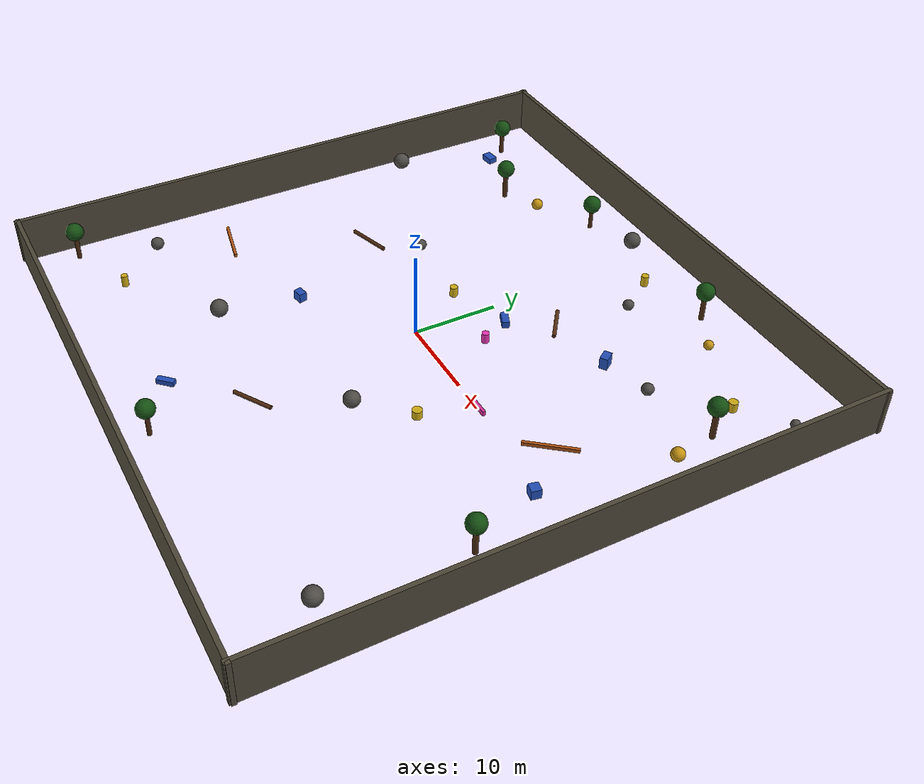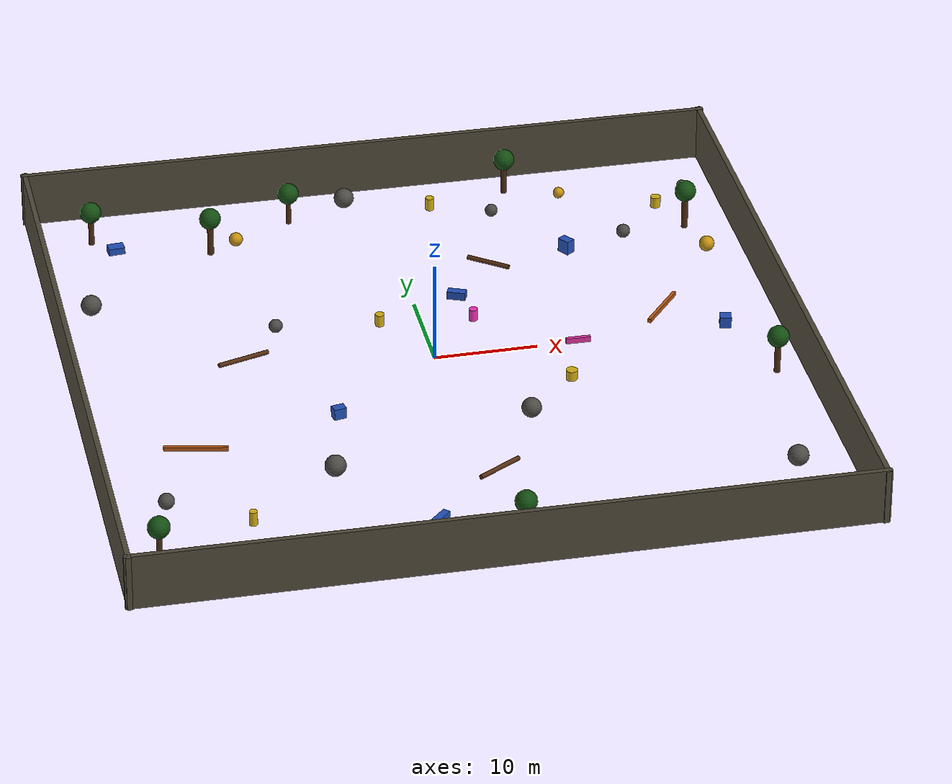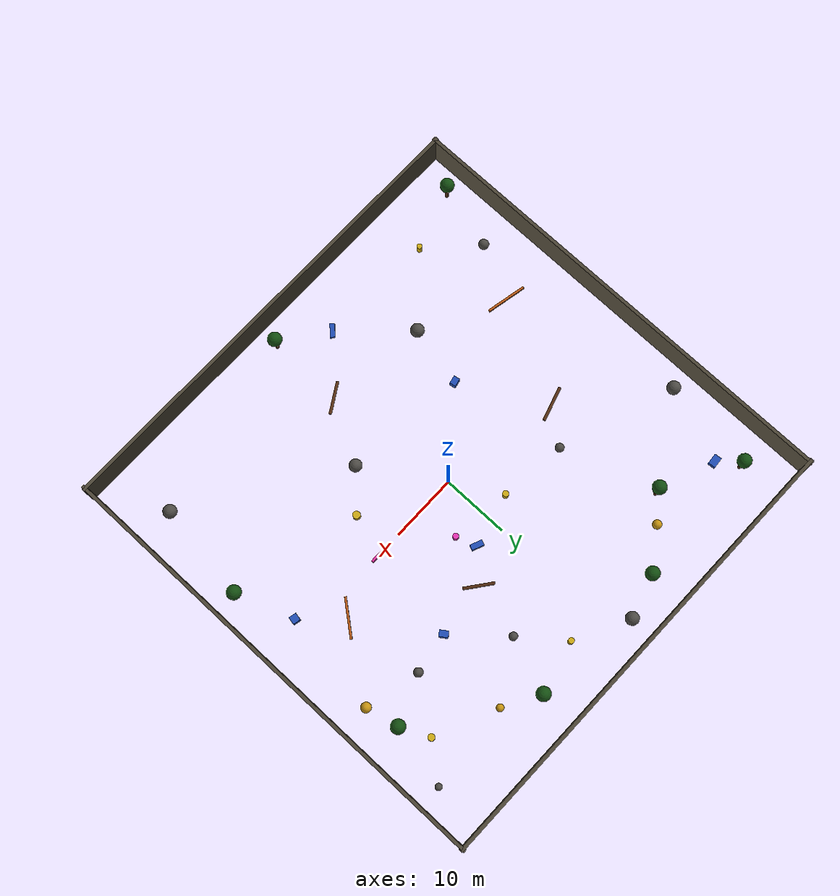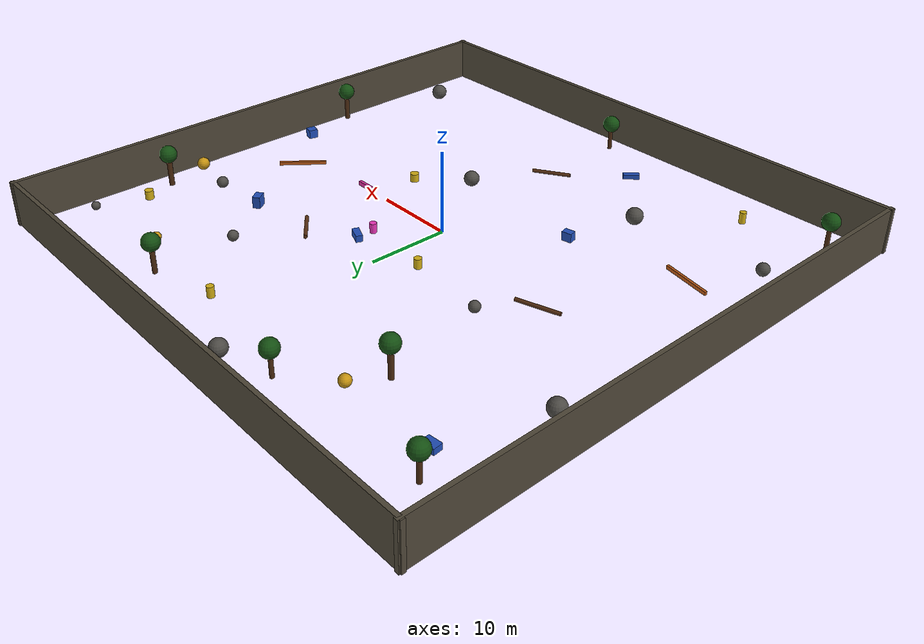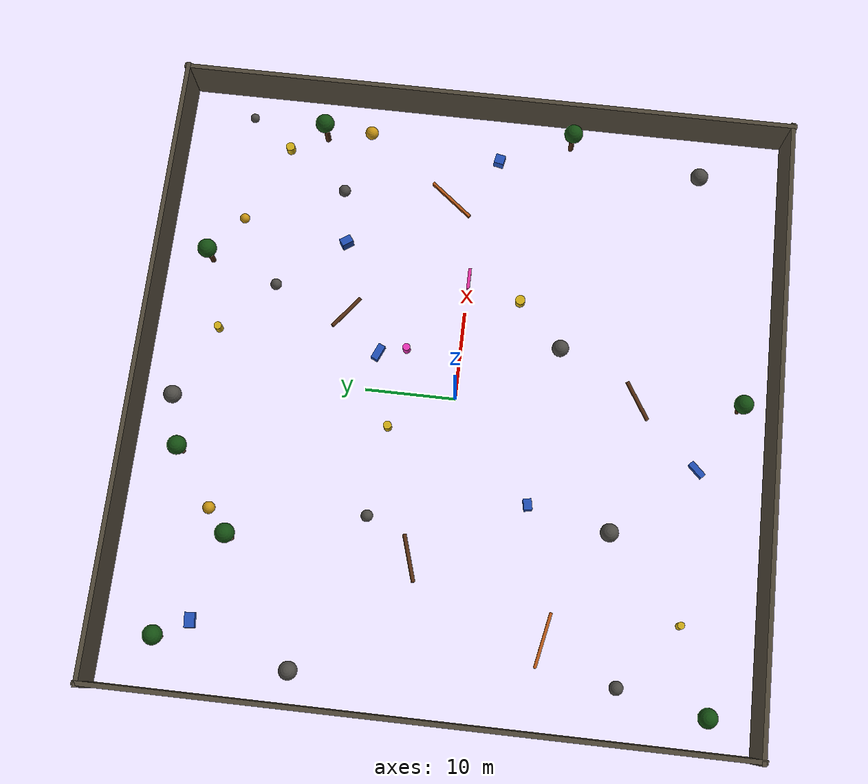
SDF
<sdf version="1.8">
 <world name="semantic_segmentation_world">
  <model name="long_static_obstacles">
   <static>true</static>
   <link name="long_static_obstacles_link">
    <collision name="long_0_collision">
     <pose>-18.000000 3.000000 0.304663 0.000000 1.570796 0.300000</pose>
     <geometry><cylinder><radius>0.22</radius><length>5.2</length></cylinder></geometry>
     <surface><friction><ode><mu>1.1</mu><mu2>1.1</mu2></ode></friction></surface>
    </collision>
    <visual name="long_0_visual">
     <pose>-18.000000 3.000000 0.304663 0.000000 1.570796 0.300000</pose>
     <geometry><cylinder><radius>0.22</radius><length>5.2</length></cylinder></geometry>
     <material>
      <ambient>0.34 0.18 0.07 1.0</ambient>
      <diffuse>0.34 0.18 0.07 1.0</diffuse>
      <specular>0.04 0.04 0.04 1</specular>
     </material>
    </visual>
    <collision name="long_1_collision">
     <pose>8.000000 13.000000 2.152901 0.000000 1.570796 -0.650000</pose>
     <geometry><cylinder><radius>0.22</radius><length>4.4</length></cylinder></geometry>
     <surface><friction><ode><mu>1.1</mu><mu2>1.1</mu2></ode></friction></surface>
    </collision>
    <visual name="long_1_visual">
     <pose>8.000000 13.000000 2.152901 0.000000 1.570796 -0.650000</pose>
     <geometry><cylinder><radius>0.22</radius><length>4.4</length></cylinder></geometry>
     <material>
      <ambient>0.34 0.18 0.07 1.0</ambient>
      <diffuse>0.34 0.18 0.07 1.0</diffuse>
      <specular>0.04 0.04 0.04 1</specular>
     </material>
    </visual>
    <collision name="long_2_collision">
     <pose>23.000000 3.000000 1.112447 0.000000 0.000000 0.900000</pose>
     <geometry><box><size>5.8 0.32 0.42</size></box></geometry>
     <surface><friction><ode><mu>1.1</mu><mu2>1.1</mu2></ode></friction></surface>
    </collision>
    <visual name="long_2_visual">
     <pose>23.000000 3.000000 1.112447 0.000000 0.000000 0.900000</pose>
     <geometry><box><size>5.8 0.32 0.42</size></box></geometry>
     <material>
      <ambient>0.72 0.34 0.08 1.0</ambient>
      <diffuse>0.72 0.34 0.08 1.0</diffuse>
      <specular>0.04 0.04 0.04 1</specular>
     </material>
    </visual>
    <collision name="long_3_collision">
     <pose>-25.000000 -12.000000 0.508428 0.000000 0.000000 -0.200000</pose>
     <geometry><box><size>6.0 0.32 0.42</size></box></geometry>
     <surface><friction><ode><mu>1.1</mu><mu2>1.1</mu2></ode></friction></surface>
    </collision>
    <visual name="long_3_visual">
     <pose>-25.000000 -12.000000 0.508428 0.000000 0.000000 -0.200000</pose>
     <geometry><box><size>6.0 0.32 0.42</size></box></geometry>
     <material>
      <ambient>0.72 0.34 0.08 1.0</ambient>
      <diffuse>0.72 0.34 0.08 1.0</diffuse>
      <specular>0.04 0.04 0.04 1</specular>
     </material>
    </visual>
    <collision name="long_4_collision">
     <pose>2.000000 -20.000000 -0.035749 0.000000 1.570796 0.550000</pose>
     <geometry><cylinder><radius>0.22</radius><length>4.8</length></cylinder></geometry>
     <surface><friction><ode><mu>1.1</mu><mu2>1.1</mu2></ode></friction></surface>
    </collision>
    <visual name="long_4_visual">
     <pose>2.000000 -20.000000 -0.035749 0.000000 1.570796 0.550000</pose>
     <geometry><cylinder><radius>0.22</radius><length>4.8</length></cylinder></geometry>
     <material>
      <ambient>0.34 0.18 0.07 1.0</ambient>
      <diffuse>0.34 0.18 0.07 1.0</diffuse>
      <specular>0.04 0.04 0.04 1</specular>
     </material>
    </visual>
   </link>
   <plugin filename="ignition-gazebo-label-system" name="ignition::gazebo::systems::Label">
    <label>9</label>
   </plugin>
  </model>
  <model name="rectangular_static_obstacles">
   <static>true</static>
   <link name="rectangular_static_obstacles_link">
    <collision name="box_0_collision">
     <pose>-11.000000 -9.000000 0.852319 0.000000 0.000000 0.200000</pose>
     <geometry><box><size>1.2 0.9 1.1</size></box></geometry>
     <surface><friction><ode><mu>1.1</mu><mu2>1.1</mu2></ode></friction></surface>
    </collision>
    <visual name="box_0_visual">
     <pose>-11.000000 -9.000000 0.852319 0.000000 0.000000 0.200000</pose>
     <geometry><box><size>1.2 0.9 1.1</size></box></geometry>
     <material>
      <ambient>0.13 0.31 0.72 1.0</ambient>
      <diffuse>0.13 0.31 0.72 1.0</diffuse>
      <specular>0.04 0.04 0.04 1</specular>
     </material>
    </visual>
    <collision name="box_1_collision">
     <pose>4.000000 9.000000 1.309728 0.000000 0.000000 -0.400000</pose>
     <geometry><box><size>1.8 0.8 0.8</size></box></geometry>
     <surface><friction><ode><mu>1.1</mu><mu2>1.1</mu2></ode></friction></surface>
    </collision>
    <visual name="box_1_visual">
     <pose>4.000000 9.000000 1.309728 0.000000 0.000000 -0.400000</pose>
     <geometry><box><size>1.8 0.8 0.8</size></box></geometry>
     <material>
      <ambient>0.13 0.31 0.72 1.0</ambient>
      <diffuse>0.13 0.31 0.72 1.0</diffuse>
      <specular>0.04 0.04 0.04 1</specular>
     </material>
    </visual>
    <collision name="box_2_collision">
     <pose>16.000000 14.000000 2.565279 0.000000 0.000000 0.600000</pose>
     <geometry><box><size>0.9 1.3 1.4</size></box></geometry>
     <surface><friction><ode><mu>1.1</mu><mu2>1.1</mu2></ode></friction></surface>
    </collision>
    <visual name="box_2_visual">
     <pose>16.000000 14.000000 2.565279 0.000000 0.000000 0.600000</pose>
     <geometry><box><size>0.9 1.3 1.4</size></box></geometry>
     <material>
      <ambient>0.13 0.31 0.72 1.0</ambient>
      <diffuse>0.13 0.31 0.72 1.0</diffuse>
      <specular>0.04 0.04 0.04 1</specular>
     </material>
    </visual>
    <collision name="box_3_collision">
     <pose>-27.000000 25.000000 0.843831 0.000000 0.000000 0.100000</pose>
     <geometry><box><size>1.6 1.1 0.7</size></box></geometry>
     <surface><friction><ode><mu>1.1</mu><mu2>1.1</mu2></ode></friction></surface>
    </collision>
    <visual name="box_3_visual">
     <pose>-27.000000 25.000000 0.843831 0.000000 0.000000 0.100000</pose>
     <geometry><box><size>1.6 1.1 0.7</size></box></geometry>
     <material>
      <ambient>0.13 0.31 0.72 1.0</ambient>
      <diffuse>0.13 0.31 0.72 1.0</diffuse>
      <specular>0.04 0.04 0.04 1</specular>
     </material>
    </visual>
    <collision name="box_4_collision">
     <pose>28.000000 -2.000000 1.976886 0.000000 0.000000 -0.200000</pose>
     <geometry><box><size>1.1 1.1 1.1</size></box></geometry>
     <surface><friction><ode><mu>1.1</mu><mu2>1.1</mu2></ode></friction></surface>
    </collision>
    <visual name="box_4_visual">
     <pose>28.000000 -2.000000 1.976886 0.000000 0.000000 -0.200000</pose>
     <geometry><box><size>1.1 1.1 1.1</size></box></geometry>
     <material>
      <ambient>0.13 0.31 0.72 1.0</ambient>
      <diffuse>0.13 0.31 0.72 1.0</diffuse>
      <specular>0.04 0.04 0.04 1</specular>
     </material>
    </visual>
    <collision name="box_5_collision">
     <pose>-5.000000 -27.000000 -0.136591 0.000000 0.000000 0.800000</pose>
     <geometry><box><size>2.0 0.7 0.6</size></box></geometry>
     <surface><friction><ode><mu>1.1</mu><mu2>1.1</mu2></ode></friction></surface>
    </collision>
    <visual name="box_5_visual">
     <pose>-5.000000 -27.000000 -0.136591 0.000000 0.000000 0.800000</pose>
     <geometry><box><size>2.0 0.7 0.6</size></box></geometry>
     <material>
      <ambient>0.13 0.31 0.72 1.0</ambient>
      <diffuse>0.13 0.31 0.72 1.0</diffuse>
      <specular>0.04 0.04 0.04 1</specular>
     </material>
    </visual>
   </link>
   <plugin filename="ignition-gazebo-label-system" name="ignition::gazebo::systems::Label">
    <label>10</label>
   </plugin>
  </model>
  <model name="round_static_obstacles">
   <static>true</static>
   <link name="round_static_obstacles_link">
    <collision name="cylinder_0_collision">
     <pose>-4.000000 7.000000 0.621357 0.000000 0.000000 0.000000</pose>
     <geometry><cylinder><radius>0.45</radius><length>1.2</length></cylinder></geometry>
     <surface><friction><ode><mu>1.1</mu><mu2>1.1</mu2></ode></friction></surface>
    </collision>
    <visual name="cylinder_0_visual">
     <pose>-4.000000 7.000000 0.621357 0.000000 0.000000 0.000000</pose>
     <geometry><cylinder><radius>0.45</radius><length>1.2</length></cylinder></geometry>
     <material>
      <ambient>0.82 0.68 0.08 1.0</ambient>
      <diffuse>0.82 0.68 0.08 1.0</diffuse>
      <specular>0.04 0.04 0.04 1</specular>
     </material>
    </visual>
    <collision name="cylinder_1_collision">
     <pose>12.000000 -6.000000 0.327141 0.000000 0.000000 0.000000</pose>
     <geometry><cylinder><radius>0.55</radius><length>1.0</length></cylinder></geometry>
     <surface><friction><ode><mu>1.1</mu><mu2>1.1</mu2></ode></friction></surface>
    </collision>
    <visual name="cylinder_1_visual">
     <pose>12.000000 -6.000000 0.327141 0.000000 0.000000 0.000000</pose>
     <geometry><cylinder><radius>0.55</radius><length>1.0</length></cylinder></geometry>
     <material>
      <ambient>0.82 0.68 0.08 1.0</ambient>
      <diffuse>0.82 0.68 0.08 1.0</diffuse>
      <specular>0.04 0.04 0.04 1</specular>
     </material>
    </visual>
    <collision name="cylinder_2_collision">
     <pose>-22.000000 -26.000000 1.509926 0.000000 0.000000 0.000000</pose>
     <geometry><cylinder><radius>0.38</radius><length>1.4</length></cylinder></geometry>
     <surface><friction><ode><mu>1.1</mu><mu2>1.1</mu2></ode></friction></surface>
    </collision>
    <visual name="cylinder_2_visual">
     <pose>-22.000000 -26.000000 1.509926 0.000000 0.000000 0.000000</pose>
     <geometry><cylinder><radius>0.38</radius><length>1.4</length></cylinder></geometry>
     <material>
      <ambient>0.82 0.68 0.08 1.0</ambient>
      <diffuse>0.82 0.68 0.08 1.0</diffuse>
      <specular>0.04 0.04 0.04 1</specular>
     </material>
    </visual>
    <collision name="cylinder_3_collision">
     <pose>27.000000 22.000000 1.787276 0.000000 0.000000 0.000000</pose>
     <geometry><cylinder><radius>0.5</radius><length>1.1</length></cylinder></geometry>
     <surface><friction><ode><mu>1.1</mu><mu2>1.1</mu2></ode></friction></surface>
    </collision>
    <visual name="cylinder_3_visual">
     <pose>27.000000 22.000000 1.787276 0.000000 0.000000 0.000000</pose>
     <geometry><cylinder><radius>0.5</radius><length>1.1</length></cylinder></geometry>
     <material>
      <ambient>0.82 0.68 0.08 1.0</ambient>
      <diffuse>0.82 0.68 0.08 1.0</diffuse>
      <specular>0.04 0.04 0.04 1</specular>
     </material>
    </visual>
    <collision name="cylinder_4_collision">
     <pose>5.000000 27.000000 1.255718 0.000000 0.000000 0.000000</pose>
     <geometry><cylinder><radius>0.42</radius><length>1.3</length></cylinder></geometry>
     <surface><friction><ode><mu>1.1</mu><mu2>1.1</mu2></ode></friction></surface>
    </collision>
    <visual name="cylinder_4_visual">
     <pose>5.000000 27.000000 1.255718 0.000000 0.000000 0.000000</pose>
     <geometry><cylinder><radius>0.42</radius><length>1.3</length></cylinder></geometry>
     <material>
      <ambient>0.82 0.68 0.08 1.0</ambient>
      <diffuse>0.82 0.68 0.08 1.0</diffuse>
      <specular>0.04 0.04 0.04 1</specular>
     </material>
    </visual>
    <collision name="sphere_0_collision">
     <pose>-15.000000 25.000000 0.573359 0.000000 0.000000 0.000000</pose>
     <geometry><sphere><radius>0.68</radius></sphere></geometry>
     <surface><friction><ode><mu>1.1</mu><mu2>1.1</mu2></ode></friction></surface>
    </collision>
    <visual name="sphere_0_visual">
     <pose>-15.000000 25.000000 0.573359 0.000000 0.000000 0.000000</pose>
     <geometry><sphere><radius>0.68</radius></sphere></geometry>
     <material>
      <ambient>0.78 0.58 0.07 1.0</ambient>
      <diffuse>0.78 0.58 0.07 1.0</diffuse>
      <specular>0.04 0.04 0.04 1</specular>
     </material>
    </visual>
    <collision name="sphere_1_collision">
     <pose>18.000000 26.000000 1.557190 0.000000 0.000000 0.000000</pose>
     <geometry><sphere><radius>0.55</radius></sphere></geometry>
     <surface><friction><ode><mu>1.1</mu><mu2>1.1</mu2></ode></friction></surface>
    </collision>
    <visual name="sphere_1_visual">
     <pose>18.000000 26.000000 1.557190 0.000000 0.000000 0.000000</pose>
     <geometry><sphere><radius>0.55</radius></sphere></geometry>
     <material>
      <ambient>0.78 0.58 0.07 1.0</ambient>
      <diffuse>0.78 0.58 0.07 1.0</diffuse>
      <specular>0.04 0.04 0.04 1</specular>
     </material>
    </visual>
    <collision name="sphere_2_collision">
     <pose>30.000000 13.000000 1.688888 0.000000 0.000000 0.000000</pose>
     <geometry><sphere><radius>0.75</radius></sphere></geometry>
     <surface><friction><ode><mu>1.1</mu><mu2>1.1</mu2></ode></friction></surface>
    </collision>
    <visual name="sphere_2_visual">
     <pose>30.000000 13.000000 1.688888 0.000000 0.000000 0.000000</pose>
     <geometry><sphere><radius>0.75</radius></sphere></geometry>
     <material>
      <ambient>0.78 0.58 0.07 1.0</ambient>
      <diffuse>0.78 0.58 0.07 1.0</diffuse>
      <specular>0.04 0.04 0.04 1</specular>
     </material>
    </visual>
   </link>
   <plugin filename="ignition-gazebo-label-system" name="ignition::gazebo::systems::Label">
    <label>11</label>
   </plugin>
  </model>
  <model name="natural_rocks">
   <static>true</static>
   <link name="natural_rocks_link">
    <collision name="rock_0_collision">
     <pose>-31.000000 14.000000 1.338147 0.000000 0.000000 0.000000</pose>
     <geometry><sphere><radius>0.997427702895908</radius></sphere></geometry>
     <surface><friction><ode><mu>1.1</mu><mu2>1.1</mu2></ode></friction></surface>
    </collision>
    <visual name="rock_0_visual">
     <pose>-31.000000 14.000000 1.338147 0.000000 0.000000 0.000000</pose>
     <geometry><sphere><radius>0.997427702895908</radius></sphere></geometry>
     <material>
      <ambient>0.3 0.29 0.27 1.0</ambient>
      <diffuse>0.3 0.29 0.27 1.0</diffuse>
      <specular>0.04 0.04 0.04 1</specular>
     </material>
    </visual>
    <collision name="rock_1_collision">
     <pose>-14.000000 8.000000 0.511767 0.000000 0.000000 0.000000</pose>
     <geometry><sphere><radius>0.6588141869867687</radius></sphere></geometry>
     <surface><friction><ode><mu>1.1</mu><mu2>1.1</mu2></ode></friction></surface>
    </collision>
    <visual name="rock_1_visual">
     <pose>-14.000000 8.000000 0.511767 0.000000 0.000000 0.000000</pose>
     <geometry><sphere><radius>0.6588141869867687</radius></sphere></geometry>
     <material>
      <ambient>0.3 0.29 0.27 1.0</ambient>
      <diffuse>0.3 0.29 0.27 1.0</diffuse>
      <specular>0.04 0.04 0.04 1</specular>
     </material>
    </visual>
    <collision name="rock_2_collision">
     <pose>10.000000 21.000000 3.259384 0.000000 0.000000 0.000000</pose>
     <geometry><sphere><radius>0.6143755115649239</radius></sphere></geometry>
     <surface><friction><ode><mu>1.1</mu><mu2>1.1</mu2></ode></friction></surface>
    </collision>
    <visual name="rock_2_visual">
     <pose>10.000000 21.000000 3.259384 0.000000 0.000000 0.000000</pose>
     <geometry><sphere><radius>0.6143755115649239</radius></sphere></geometry>
     <material>
      <ambient>0.3 0.29 0.27 1.0</ambient>
      <diffuse>0.3 0.29 0.27 1.0</diffuse>
      <specular>0.04 0.04 0.04 1</specular>
     </material>
    </visual>
    <collision name="rock_3_collision">
     <pose>22.000000 15.000000 2.922157 0.000000 0.000000 0.000000</pose>
     <geometry><sphere><radius>0.6677817417501811</radius></sphere></geometry>
     <surface><friction><ode><mu>1.1</mu><mu2>1.1</mu2></ode></friction></surface>
    </collision>
    <visual name="rock_3_visual">
     <pose>22.000000 15.000000 2.922157 0.000000 0.000000 0.000000</pose>
     <geometry><sphere><radius>0.6677817417501811</radius></sphere></geometry>
     <material>
      <ambient>0.3 0.29 0.27 1.0</ambient>
      <diffuse>0.3 0.29 0.27 1.0</diffuse>
      <specular>0.04 0.04 0.04 1</specular>
     </material>
    </visual>
    <collision name="rock_4_collision">
     <pose>-29.000000 -20.000000 0.343316 0.000000 0.000000 0.000000</pose>
     <geometry><sphere><radius>0.7609597664918595</radius></sphere></geometry>
     <surface><friction><ode><mu>1.1</mu><mu2>1.1</mu2></ode></friction></surface>
    </collision>
    <visual name="rock_4_visual">
     <pose>-29.000000 -20.000000 0.343316 0.000000 0.000000 0.000000</pose>
     <geometry><sphere><radius>0.7609597664918595</radius></sphere></geometry>
     <material>
      <ambient>0.3 0.29 0.27 1.0</ambient>
      <diffuse>0.3 0.29 0.27 1.0</diffuse>
      <specular>0.04 0.04 0.04 1</specular>
     </material>
    </visual>
    <collision name="rock_5_collision">
     <pose>-13.000000 -18.000000 0.854688 0.000000 0.000000 0.000000</pose>
     <geometry><sphere><radius>1.010453317160498</radius></sphere></geometry>
     <surface><friction><ode><mu>1.1</mu><mu2>1.1</mu2></ode></friction></surface>
    </collision>
    <visual name="rock_5_visual">
     <pose>-13.000000 -18.000000 0.854688 0.000000 0.000000 0.000000</pose>
     <geometry><sphere><radius>1.010453317160498</radius></sphere></geometry>
     <material>
      <ambient>0.3 0.29 0.27 1.0</ambient>
      <diffuse>0.3 0.29 0.27 1.0</diffuse>
      <specular>0.04 0.04 0.04 1</specular>
     </material>
    </visual>
    <collision name="rock_6_collision">
     <pose>7.000000 -11.000000 0.326656 0.000000 0.000000 0.000000</pose>
     <geometry><sphere><radius>0.9467032374157933</radius></sphere></geometry>
     <surface><friction><ode><mu>1.1</mu><mu2>1.1</mu2></ode></friction></surface>
    </collision>
    <visual name="rock_6_visual">
     <pose>7.000000 -11.000000 0.326656 0.000000 0.000000 0.000000</pose>
     <geometry><sphere><radius>0.9467032374157933</radius></sphere></geometry>
     <material>
      <ambient>0.3 0.29 0.27 1.0</ambient>
      <diffuse>0.3 0.29 0.27 1.0</diffuse>
      <specular>0.04 0.04 0.04 1</specular>
     </material>
    </visual>
    <collision name="rock_7_collision">
     <pose>29.000000 -25.000000 0.973108 0.000000 0.000000 0.000000</pose>
     <geometry><sphere><radius>0.9982959193209517</radius></sphere></geometry>
     <surface><friction><ode><mu>1.1</mu><mu2>1.1</mu2></ode></friction></surface>
    </collision>
    <visual name="rock_7_visual">
     <pose>29.000000 -25.000000 0.973108 0.000000 0.000000 0.000000</pose>
     <geometry><sphere><radius>0.9982959193209517</radius></sphere></geometry>
     <material>
      <ambient>0.3 0.29 0.27 1.0</ambient>
      <diffuse>0.3 0.29 0.27 1.0</diffuse>
      <specular>0.04 0.04 0.04 1</specular>
     </material>
    </visual>
    <collision name="rock_8_collision">
     <pose>31.000000 27.000000 0.408715 0.000000 0.000000 0.000000</pose>
     <geometry><sphere><radius>0.5170559053230149</radius></sphere></geometry>
     <surface><friction><ode><mu>1.1</mu><mu2>1.1</mu2></ode></friction></surface>
    </collision>
    <visual name="rock_8_visual">
     <pose>31.000000 27.000000 0.408715 0.000000 0.000000 0.000000</pose>
     <geometry><sphere><radius>0.5170559053230149</radius></sphere></geometry>
     <material>
      <ambient>0.3 0.29 0.27 1.0</ambient>
      <diffuse>0.3 0.29 0.27 1.0</diffuse>
      <specular>0.04 0.04 0.04 1</specular>
     </material>
    </visual>
    <collision name="rock_9_collision">
     <pose>-3.000000 31.000000 0.549097 0.000000 0.000000 0.000000</pose>
     <geometry><sphere><radius>0.9912260415007745</radius></sphere></geometry>
     <surface><friction><ode><mu>1.1</mu><mu2>1.1</mu2></ode></friction></surface>
    </collision>
    <visual name="rock_9_visual">
     <pose>-3.000000 31.000000 0.549097 0.000000 0.000000 0.000000</pose>
     <geometry><sphere><radius>0.9912260415007745</radius></sphere></geometry>
     <material>
      <ambient>0.3 0.29 0.27 1.0</ambient>
      <diffuse>0.3 0.29 0.27 1.0</diffuse>
      <specular>0.04 0.04 0.04 1</specular>
     </material>
    </visual>
   </link>
   <plugin filename="ignition-gazebo-label-system" name="ignition::gazebo::systems::Label">
    <label>8</label>
   </plugin>
  </model>
  <model name="vegetation_obstacles">
   <static>true</static>
   <link name="vegetation_obstacles_link">
    <collision name="trunk_0_collision">
     <pose>-29.000000 28.000000 1.469188 0.000000 0.000000 0.000000</pose>
     <geometry><cylinder><radius>0.27</radius><length>3.0</length></cylinder></geometry>
     <surface><friction><ode><mu>1.1</mu><mu2>1.1</mu2></ode></friction></surface>
    </collision>
    <visual name="trunk_0_visual">
     <pose>-29.000000 28.000000 1.469188 0.000000 0.000000 0.000000</pose>
     <geometry><cylinder><radius>0.27</radius><length>3.0</length></cylinder></geometry>
     <material>
      <ambient>0.29 0.16 0.065 1.0</ambient>
      <diffuse>0.29 0.16 0.065 1.0</diffuse>
      <specular>0.04 0.04 0.04 1</specular>
     </material>
    </visual>
    <visual name="crown_0_visual">
     <pose>-29.000000 28.000000 3.519188 0.000000 0.000000 0.000000</pose>
     <geometry><sphere><radius>1.05</radius></sphere></geometry>
     <material>
      <ambient>0.08 0.31 0.07 1.0</ambient>
      <diffuse>0.08 0.31 0.07 1.0</diffuse>
      <specular>0.04 0.04 0.04 1</specular>
     </material>
    </visual>
    <collision name="trunk_1_collision">
     <pose>-18.000000 22.000000 2.690664 0.000000 0.000000 0.000000</pose>
     <geometry><cylinder><radius>0.3</radius><length>3.4</length></cylinder></geometry>
     <surface><friction><ode><mu>1.1</mu><mu2>1.1</mu2></ode></friction></surface>
    </collision>
    <visual name="trunk_1_visual">
     <pose>-18.000000 22.000000 2.690664 0.000000 0.000000 0.000000</pose>
     <geometry><cylinder><radius>0.3</radius><length>3.4</length></cylinder></geometry>
     <material>
      <ambient>0.29 0.16 0.065 1.0</ambient>
      <diffuse>0.29 0.16 0.065 1.0</diffuse>
      <specular>0.04 0.04 0.04 1</specular>
     </material>
    </visual>
    <visual name="crown_1_visual">
     <pose>-18.000000 22.000000 4.940664 0.000000 0.000000 0.000000</pose>
     <geometry><sphere><radius>1.05</radius></sphere></geometry>
     <material>
      <ambient>0.08 0.31 0.07 1.0</ambient>
      <diffuse>0.08 0.31 0.07 1.0</diffuse>
      <specular>0.04 0.04 0.04 1</specular>
     </material>
    </visual>
    <collision name="trunk_2_collision">
     <pose>-9.000000 29.000000 0.880696 0.000000 0.000000 0.000000</pose>
     <geometry><cylinder><radius>0.24</radius><length>2.8</length></cylinder></geometry>
     <surface><friction><ode><mu>1.1</mu><mu2>1.1</mu2></ode></friction></surface>
    </collision>
    <visual name="trunk_2_visual">
     <pose>-9.000000 29.000000 0.880696 0.000000 0.000000 0.000000</pose>
     <geometry><cylinder><radius>0.24</radius><length>2.8</length></cylinder></geometry>
     <material>
      <ambient>0.29 0.16 0.065 1.0</ambient>
      <diffuse>0.29 0.16 0.065 1.0</diffuse>
      <specular>0.04 0.04 0.04 1</specular>
     </material>
    </visual>
    <visual name="crown_2_visual">
     <pose>-9.000000 29.000000 2.830696 0.000000 0.000000 0.000000</pose>
     <geometry><sphere><radius>1.05</radius></sphere></geometry>
     <material>
      <ambient>0.08 0.31 0.07 1.0</ambient>
      <diffuse>0.08 0.31 0.07 1.0</diffuse>
      <specular>0.04 0.04 0.04 1</specular>
     </material>
    </visual>
    <collision name="trunk_3_collision">
     <pose>13.000000 29.000000 2.102161 0.000000 0.000000 0.000000</pose>
     <geometry><cylinder><radius>0.28</radius><length>3.2</length></cylinder></geometry>
     <surface><friction><ode><mu>1.1</mu><mu2>1.1</mu2></ode></friction></surface>
    </collision>
    <visual name="trunk_3_visual">
     <pose>13.000000 29.000000 2.102161 0.000000 0.000000 0.000000</pose>
     <geometry><cylinder><radius>0.28</radius><length>3.2</length></cylinder></geometry>
     <material>
      <ambient>0.29 0.16 0.065 1.0</ambient>
      <diffuse>0.29 0.16 0.065 1.0</diffuse>
      <specular>0.04 0.04 0.04 1</specular>
     </material>
    </visual>
    <visual name="crown_3_visual">
     <pose>13.000000 29.000000 4.252161 0.000000 0.000000 0.000000</pose>
     <geometry><sphere><radius>1.05</radius></sphere></geometry>
     <material>
      <ambient>0.08 0.31 0.07 1.0</ambient>
      <diffuse>0.08 0.31 0.07 1.0</diffuse>
      <specular>0.04 0.04 0.04 1</specular>
     </material>
    </visual>
    <collision name="trunk_4_collision">
     <pose>29.000000 18.000000 2.640744 0.000000 0.000000 0.000000</pose>
     <geometry><cylinder><radius>0.31</radius><length>3.5</length></cylinder></geometry>
     <surface><friction><ode><mu>1.1</mu><mu2>1.1</mu2></ode></friction></surface>
    </collision>
    <visual name="trunk_4_visual">
     <pose>29.000000 18.000000 2.640744 0.000000 0.000000 0.000000</pose>
     <geometry><cylinder><radius>0.31</radius><length>3.5</length></cylinder></geometry>
     <material>
      <ambient>0.29 0.16 0.065 1.0</ambient>
      <diffuse>0.29 0.16 0.065 1.0</diffuse>
      <specular>0.04 0.04 0.04 1</specular>
     </material>
    </visual>
    <visual name="crown_4_visual">
     <pose>29.000000 18.000000 4.940744 0.000000 0.000000 0.000000</pose>
     <geometry><sphere><radius>1.05</radius></sphere></geometry>
     <material>
      <ambient>0.08 0.31 0.07 1.0</ambient>
      <diffuse>0.08 0.31 0.07 1.0</diffuse>
      <specular>0.04 0.04 0.04 1</specular>
     </material>
    </visual>
    <collision name="trunk_5_collision">
     <pose>-31.000000 -29.000000 1.520386 0.000000 0.000000 0.000000</pose>
     <geometry><cylinder><radius>0.26</radius><length>3.1</length></cylinder></geometry>
     <surface><friction><ode><mu>1.1</mu><mu2>1.1</mu2></ode></friction></surface>
    </collision>
    <visual name="trunk_5_visual">
     <pose>-31.000000 -29.000000 1.520386 0.000000 0.000000 0.000000</pose>
     <geometry><cylinder><radius>0.26</radius><length>3.1</length></cylinder></geometry>
     <material>
      <ambient>0.29 0.16 0.065 1.0</ambient>
      <diffuse>0.29 0.16 0.065 1.0</diffuse>
      <specular>0.04 0.04 0.04 1</specular>
     </material>
    </visual>
    <visual name="crown_5_visual">
     <pose>-31.000000 -29.000000 3.620386 0.000000 0.000000 0.000000</pose>
     <geometry><sphere><radius>1.05</radius></sphere></geometry>
     <material>
      <ambient>0.08 0.31 0.07 1.0</ambient>
      <diffuse>0.08 0.31 0.07 1.0</diffuse>
      <specular>0.04 0.04 0.04 1</specular>
     </material>
    </visual>
    <collision name="trunk_6_collision">
     <pose>2.000000 -31.000000 1.332488 0.000000 0.000000 0.000000</pose>
     <geometry><cylinder><radius>0.25</radius><length>2.9</length></cylinder></geometry>
     <surface><friction><ode><mu>1.1</mu><mu2>1.1</mu2></ode></friction></surface>
    </collision>
    <visual name="trunk_6_visual">
     <pose>2.000000 -31.000000 1.332488 0.000000 0.000000 0.000000</pose>
     <geometry><cylinder><radius>0.25</radius><length>2.9</length></cylinder></geometry>
     <material>
      <ambient>0.29 0.16 0.065 1.0</ambient>
      <diffuse>0.29 0.16 0.065 1.0</diffuse>
      <specular>0.04 0.04 0.04 1</specular>
     </material>
    </visual>
    <visual name="crown_6_visual">
     <pose>2.000000 -31.000000 3.332488 0.000000 0.000000 0.000000</pose>
     <geometry><sphere><radius>1.05</radius></sphere></geometry>
     <material>
      <ambient>0.08 0.31 0.07 1.0</ambient>
      <diffuse>0.08 0.31 0.07 1.0</diffuse>
      <specular>0.04 0.04 0.04 1</specular>
     </material>
    </visual>
    <collision name="trunk_7_collision">
     <pose>31.000000 -10.000000 2.350551 0.000000 0.000000 0.000000</pose>
     <geometry><cylinder><radius>0.29</radius><length>3.3</length></cylinder></geometry>
     <surface><friction><ode><mu>1.1</mu><mu2>1.1</mu2></ode></friction></surface>
    </collision>
    <visual name="trunk_7_visual">
     <pose>31.000000 -10.000000 2.350551 0.000000 0.000000 0.000000</pose>
     <geometry><cylinder><radius>0.29</radius><length>3.3</length></cylinder></geometry>
     <material>
      <ambient>0.29 0.16 0.065 1.0</ambient>
      <diffuse>0.29 0.16 0.065 1.0</diffuse>
      <specular>0.04 0.04 0.04 1</specular>
     </material>
    </visual>
    <visual name="crown_7_visual">
     <pose>31.000000 -10.000000 4.550551 0.000000 0.000000 0.000000</pose>
     <geometry><sphere><radius>1.05</radius></sphere></geometry>
     <material>
      <ambient>0.08 0.31 0.07 1.0</ambient>
      <diffuse>0.08 0.31 0.07 1.0</diffuse>
      <specular>0.04 0.04 0.04 1</specular>
     </material>
    </visual>
   </link>
   <plugin filename="ignition-gazebo-label-system" name="ignition::gazebo::systems::Label">
    <label>12</label>
   </plugin>
  </model>
  <model name="dynamic_cylinder">
   <static>true</static>
   <pose>5.000000 6.000000 0.712281 0.000000 0.000000 0.000000</pose>
   <link name="body">
    <collision name="body_collision">
     <geometry><cylinder><radius>0.42</radius><length>1.2</length></cylinder></geometry>
     <surface><friction><ode><mu>1.1</mu><mu2>1.1</mu2></ode></friction></surface>
    </collision>
    <visual name="body_visual">
     <geometry><cylinder><radius>0.42</radius><length>1.2</length></cylinder></geometry>
     <material>
      <ambient>0.92 0.2 0.72 1.0</ambient>
      <diffuse>0.92 0.2 0.72 1.0</diffuse>
      <specular>0.04 0.04 0.04 1</specular>
     </material>
    </visual>
   </link>
   <plugin filename="ignition-gazebo-label-system" name="ignition::gazebo::systems::Label">
    <label>6</label>
   </plugin>
   <plugin filename="libssmi_periodic_motion_system.so" name="semantic_segmentation_husky::PeriodicMotionSystem">
    <offset>0.0000 8.0000 1.8570</offset>
    <period>22</period>
    <phase>5</phase>
   </plugin>
  </model>
  <model name="dynamic_long_bar">
   <static>true</static>
   <pose>14.000000 0.000000 0.328472 0.000000 0.000000 0.000000</pose>
   <link name="body">
    <collision name="body_collision">
     <geometry><box><size>2.4 0.35 0.55</size></box></geometry>
     <surface><friction><ode><mu>1.1</mu><mu2>1.1</mu2></ode></friction></surface>
    </collision>
    <visual name="body_visual">
     <geometry><box><size>2.4 0.35 0.55</size></box></geometry>
     <material>
      <ambient>0.88 0.18 0.62 1.0</ambient>
      <diffuse>0.88 0.18 0.62 1.0</diffuse>
      <specular>0.04 0.04 0.04 1</specular>
     </material>
    </visual>
   </link>
   <plugin filename="ignition-gazebo-label-system" name="ignition::gazebo::systems::Label">
    <label>6</label>
   </plugin>
   <plugin filename="libssmi_periodic_motion_system.so" name="semantic_segmentation_husky::PeriodicMotionSystem">
    <offset>0.0000 8.0000 0.2064</offset>
    <period>32</period>
    <phase>8</phase>
   </plugin>
  </model>
  <model name="terrain_boundary">
   <static>true</static>
   <link name="terrain_boundary_link">
    <collision name="north_collision">
     <pose>0.000000 34.600000 2.000000 0.000000 0.000000 0.000000</pose>
     <geometry><box><size>70 0.5 5.5</size></box></geometry>
     <surface><friction><ode><mu>1.1</mu><mu2>1.1</mu2></ode></friction></surface>
    </collision>
    <visual name="north_visual">
     <pose>0.000000 34.600000 2.000000 0.000000 0.000000 0.000000</pose>
     <geometry><box><size>70 0.5 5.5</size></box></geometry>
     <material>
      <ambient>0.31 0.28 0.22 1.0</ambient>
      <diffuse>0.31 0.28 0.22 1.0</diffuse>
      <specular>0.04 0.04 0.04 1</specular>
     </material>
    </visual>
    <collision name="south_collision">
     <pose>0.000000 -34.600000 2.000000 0.000000 0.000000 0.000000</pose>
     <geometry><box><size>70 0.5 5.5</size></box></geometry>
     <surface><friction><ode><mu>1.1</mu><mu2>1.1</mu2></ode></friction></surface>
    </collision>
    <visual name="south_visual">
     <pose>0.000000 -34.600000 2.000000 0.000000 0.000000 0.000000</pose>
     <geometry><box><size>70 0.5 5.5</size></box></geometry>
     <material>
      <ambient>0.31 0.28 0.22 1.0</ambient>
      <diffuse>0.31 0.28 0.22 1.0</diffuse>
      <specular>0.04 0.04 0.04 1</specular>
     </material>
    </visual>
    <collision name="east_collision">
     <pose>34.600000 0.000000 2.000000 0.000000 0.000000 0.000000</pose>
     <geometry><box><size>0.5 70 5.5</size></box></geometry>
     <surface><friction><ode><mu>1.1</mu><mu2>1.1</mu2></ode></friction></surface>
    </collision>
    <visual name="east_visual">
     <pose>34.600000 0.000000 2.000000 0.000000 0.000000 0.000000</pose>
     <geometry><box><size>0.5 70 5.5</size></box></geometry>
     <material>
      <ambient>0.31 0.28 0.22 1.0</ambient>
      <diffuse>0.31 0.28 0.22 1.0</diffuse>
      <specular>0.04 0.04 0.04 1</specular>
     </material>
    </visual>
    <collision name="west_collision">
     <pose>-34.600000 0.000000 2.000000 0.000000 0.000000 0.000000</pose>
     <geometry><box><size>0.5 70 5.5</size></box></geometry>
     <surface><friction><ode><mu>1.1</mu><mu2>1.1</mu2></ode></friction></surface>
    </collision>
    <visual name="west_visual">
     <pose>-34.600000 0.000000 2.000000 0.000000 0.000000 0.000000</pose>
     <geometry><box><size>0.5 70 5.5</size></box></geometry>
     <material>
      <ambient>0.31 0.28 0.22 1.0</ambient>
      <diffuse>0.31 0.28 0.22 1.0</diffuse>
      <specular>0.04 0.04 0.04 1</specular>
     </material>
    </visual>
   </link>
   <plugin filename="ignition-gazebo-label-system" name="ignition::gazebo::systems::Label">
    <label>4</label>
   </plugin>
  </model>
 </world>
</sdf>
